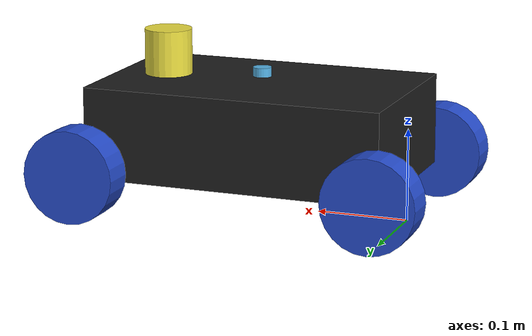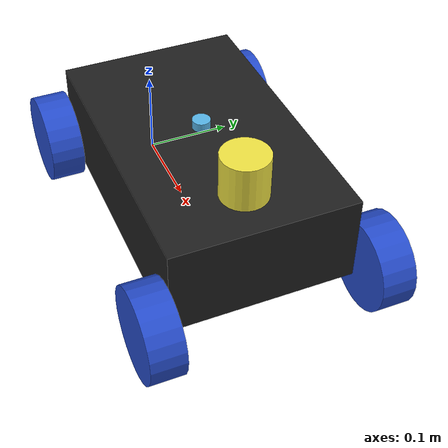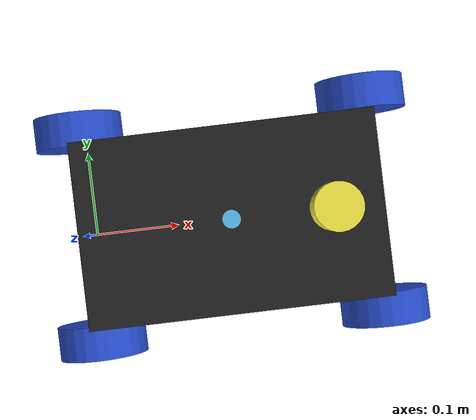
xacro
<?xml version="1.0"?>

<!-- A simple model of the racecar for rviz -->

<robot xmlns:xacro="http://www.ros.org/wiki/xacro" name="racecar">

  <xacro:property name="wheelbase" value="0.3302" />
  <xacro:property name="width" value="0.2032" />
  <xacro:property name="height" value="0.1" />
  <xacro:property name="ground_offset" value="0.04" />
  <xacro:property name="wheel_radius" value="0.0508" />
  <xacro:property name="wheel_length" value="0.0381" />
  <xacro:property name="laser_distance_from_base_link" value="0.275" />
  <xacro:property name="laser_height" value="0.05" />
  <xacro:property name="laser_radius" value="0.026" />
  <xacro:property name="car_name" value="ego_racecar" />
  <xacro:include filename="inertial_macros.xacro" />
  <xacro:include filename="gazebo_control.xacro" />

  <material name="white">
    <color rgba="1 1 1 1" />
  </material>

  <material name="orange">
    <color rgba="1 0.3 0.1 1" />
  </material>

  <material name="blue">
    <color rgba="0.2 0.2 1 1" />
  </material>

  <material name="black">
    <color rgba="0 0 0 1" />
  </material>

  <!-- BASE -->

  <link name="base_link">
    <visual>
      <origin xyz="${wheelbase/2} 0 ${ground_offset+height/2}" />
      <geometry>
        <box size="${wheelbase} ${width} ${height}" />
      </geometry>
    </visual>
    <collision>
      <origin xyz="${wheelbase/2} 0 ${ground_offset+height/2}" />
      <geometry>
        <box size="${wheelbase} ${width} ${height}" />
      </geometry>
    </collision>
    <xacro:inertial_box mass="0.5" x="${wheelbase}" y="${width}" z="${height}">
      <origin xyz="${wheelbase/2} 0 ${ground_offset+height/2}" rpy="0 0 0" />
    </xacro:inertial_box>
  </link>

  <gazebo reference="base_link">
    <material>Gazebo/black</material>
  </gazebo>

  <link name="imu">
    <visual>
      <geometry>
        <cylinder radius="0.01" length="0.01" />
      </geometry>
    </visual>
    <collision>
      <geometry>
        <cylinder radius="0.01" length="0.01" />
      </geometry>
    </collision>
    <xacro:inertial_cylinder mass="0.1" radius="0.01" length="0.01">
      <origin xyz="0 0 0" rpy="0 0 0" />
    </xacro:inertial_cylinder>
  </link>

  <joint name="base_to_imu" type="fixed">
    <parent link="base_link" />
    <child link="imu" />
    <origin xyz="${wheelbase/2} 0 ${ground_offset+height+0.01}" />
  </joint>

  <link name="odom">
    <visual>
      <geometry>
        <cylinder radius="0.01" length="0.01" />
      </geometry>
    </visual>
    <collision>
      <geometry>
        <cylinder radius="0.01" length="0.01" />
      </geometry>
    </collision>
    <xacro:inertial_cylinder mass="0.1" radius="0.01" length="0.01">
      <origin xyz="0 0 0" rpy="0 0 0" />
    </xacro:inertial_cylinder>
  </link>

  <joint name="base_to_odom" type="fixed">
    <parent link="base_link" />
    <child link="odom" />
    <origin xyz="${wheelbase/2} 0 ${ground_offset+height+0.01}" />
  </joint>

  <!-- LASER -->

  <joint name="base_to_laser_model" type="fixed">
    <parent link="base_link" />
    <child link="laser_model" />
    <origin xyz="${laser_distance_from_base_link} 0 ${ground_offset+height+(laser_height/2)}" />
  </joint>

  <link name="laser_model">
    <visual>
      <geometry>
        <cylinder radius="${laser_radius}" length="${laser_height}" />
      </geometry>
    </visual>
    <collision>
      <geometry>
        <cylinder radius="${laser_radius}" length="${laser_height}" />
      </geometry>
    </collision>
  </link>

  <gazebo reference="back_right_wheel">
    <material>Gazebo/black</material>
  </gazebo>

  <!-- BACK RIGHT WHEEL -->
  <joint name="base_to_back_right_wheel" type="continuous">
    <parent link="base_link" />
    <child link="back_right_wheel" />
    <origin xyz="0 ${-(wheel_length+width)/2} ${wheel_radius}" rpy="0 0 0" />
    <axis xyz="0 1 0" />
  </joint>

  <link name="back_right_wheel">
    <visual>
      <geometry>
        <cylinder radius="${wheel_radius}" length="${wheel_length}" />
      </geometry>
      <origin rpy="${pi/2} 0 0" />
    </visual>
    <collision>
      <geometry>
        <cylinder radius="${wheel_radius}" length="${wheel_length}" />
      </geometry>
      <origin rpy="${pi/2} 0 0" />
    </collision>
    <xacro:inertial_cylinder mass="0.1" radius="${wheel_radius}" length="${wheel_length}">
      <origin xyz="0 0 0" rpy="0 0 0" />
    </xacro:inertial_cylinder>
  </link>

  <gazebo reference="back_right_wheel">
    <material>Gazebo/Blue</material>
  </gazebo>

  <!-- BACK LEFT WHEEL -->
  <joint name="base_to_back_left_wheel" type="continuous">
    <parent link="base_link" />
    <child link="back_left_wheel" />
    <origin xyz="0 ${(wheel_length+width)/2} ${wheel_radius}" rpy="0 0 0" />
    <axis xyz="0 1 0" />
  </joint>

  <link name="back_left_wheel">
    <visual>
      <geometry>
        <cylinder radius="${wheel_radius}" length="${wheel_length}" />
      </geometry>
      <origin rpy="-${pi/2} 0 0" />
    </visual>
    <collision>
      <geometry>
        <cylinder radius="${wheel_radius}" length="${wheel_length}" />
      </geometry>
      <origin rpy="-${pi/2} 0 0" />
    </collision>
    <xacro:inertial_cylinder mass="0.1" radius="${wheel_radius}" length="${wheel_length}">
      <origin xyz="0 0 0" rpy="0 0 0" />
    </xacro:inertial_cylinder>
  </link>

  <gazebo reference="back_left_wheel">
    <material>Gazebo/Blue</material>
  </gazebo>

  <!-- FRONT RIGHT HINGE -->
  <joint name="base_to_front_right_hinge" type="revolute">
    <parent link="base_link" />
    <child link="front_right_hinge" />
    <origin xyz="${wheelbase} ${-(wheel_length+width)/2} ${wheel_radius}" />
    <axis xyz="0 0 1" />
    <limit effort="100" velocity="1" lower="-1" upper="1" />
    <dynamics damping="0.0" friction="0.0" />
  </joint>

  <link name="front_right_hinge">
    <visual>
      <geometry>
        <cylinder radius="${wheel_radius/4}" length="${wheel_length/4}" />
      </geometry>
      <origin rpy="-${pi/2} 0 0" />
    </visual>
    <collision>
      <geometry>
        <cylinder radius="${wheel_radius/4}" length="${wheel_length/4}" />
      </geometry>
      <origin rpy="-${pi/2} 0 0" />
    </collision>
    <xacro:inertial_cylinder mass="0.1" radius="${wheel_radius}" length="${wheel_length}">
      <origin xyz="0 0 0" rpy="0 0 0" />
    </xacro:inertial_cylinder>
  </link>

  <gazebo reference="front_right_hinge">
    <material>Gazebo/Blue</material>
  </gazebo>

  <!-- FRONT RIGHT WHEEL -->
  <joint name="front_right_hinge_to_wheel" type="continuous">
    <parent link="front_right_hinge" />
    <child link="front_right_wheel" />
    <origin xyz="0 0 0" />
    <axis xyz="0 1 0" />
  </joint>

  <link name="front_right_wheel">
    <visual>
      <geometry>
        <cylinder radius="${wheel_radius}" length="${wheel_length}" />
      </geometry>
      <origin rpy="-${pi/2} 0 0" />
    </visual>
    <collision>
      <geometry>
        <cylinder radius="${wheel_radius}" length="${wheel_length}" />
      </geometry>
      <origin rpy="-${pi/2} 0 0" />
    </collision>
    <xacro:inertial_cylinder mass="0.1" radius="${wheel_radius}" length="${wheel_length}">
      <origin xyz="0 0 0" rpy="0 0 0" />
    </xacro:inertial_cylinder>
  </link>

  <gazebo reference="front_right_wheel">
    <material>Gazebo/Blue</material>
  </gazebo>

  <!-- FRONT LEFT HINGE -->
  <joint name="base_to_front_left_hinge" type="revolute">
    <parent link="base_link" />
    <child link="front_left_hinge" />
    <origin xyz="${wheelbase} ${(wheel_length+width)/2} ${wheel_radius}" />
    <axis xyz="0 0 1" />
    <limit effort="100" velocity="1" lower="-1" upper="1" />
    <dynamics damping="0.0" friction="0.0" />
  </joint>

  <link name="front_left_hinge">
    <visual>
      <geometry>
        <cylinder radius="${wheel_radius/4}" length="${wheel_length/4}" />
      </geometry>
      <origin rpy="${pi/2} 0 0" />
    </visual>
    <collision>
      <geometry>
        <cylinder radius="${wheel_radius/4}" length="${wheel_length/4}" />
      </geometry>
      <origin rpy="${pi/2} 0 0" />
    </collision>
    <xacro:inertial_cylinder mass="0.1" radius="${wheel_radius}" length="${wheel_length}">
      <origin xyz="0 0 0" rpy="0 0 0" />
    </xacro:inertial_cylinder>
  </link>

  <gazebo reference="front_left_hinge">
    <material>Gazebo/Blue</material>
  </gazebo>

  <!-- FRONT LEFT WHEEL -->
  <joint name="front_left_hinge_to_wheel" type="continuous">
    <parent link="front_left_hinge" />
    <child link="front_left_wheel" />
    <origin xyz="0 0 0" />
    <axis xyz="0 1 0" />

  </joint>

  <link name="front_left_wheel">
    <visual>
      <geometry>
        <cylinder radius="${wheel_radius}" length="${wheel_length}" />
      </geometry>
      <origin xyz="0 0.005 0" rpy="${pi/2} 0 0" />
    </visual>
    <collision>
      <geometry>
        <cylinder radius="${wheel_radius}" length="${wheel_length}" />
      </geometry>
      <origin rpy="${pi/2} 0 0" />
    </collision>
    <xacro:inertial_cylinder mass="0.1" radius="${wheel_radius}" length="${wheel_length}">
      <origin xyz="0 0 0" rpy="0 0 0" />
    </xacro:inertial_cylinder>
  </link>

  <gazebo reference="front_left_wheel">
    <material>Gazebo/Blue</material>
  </gazebo>

</robot>
